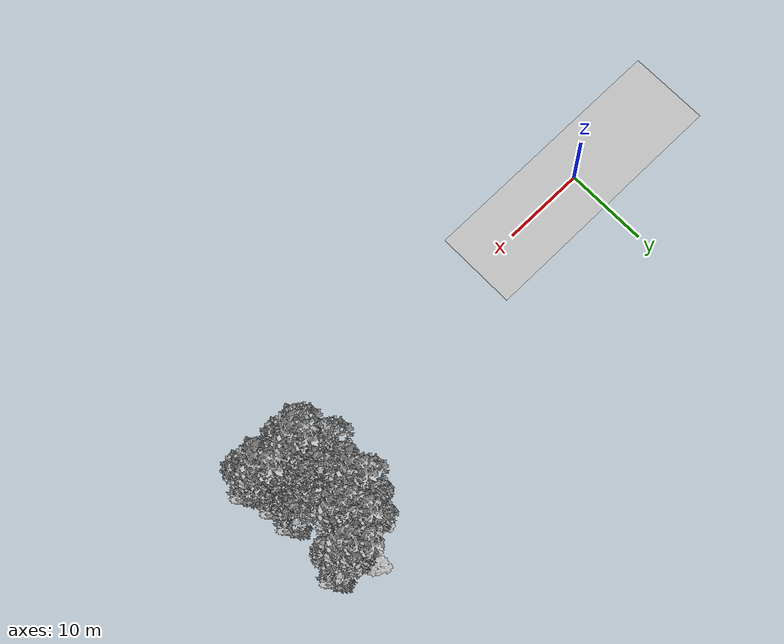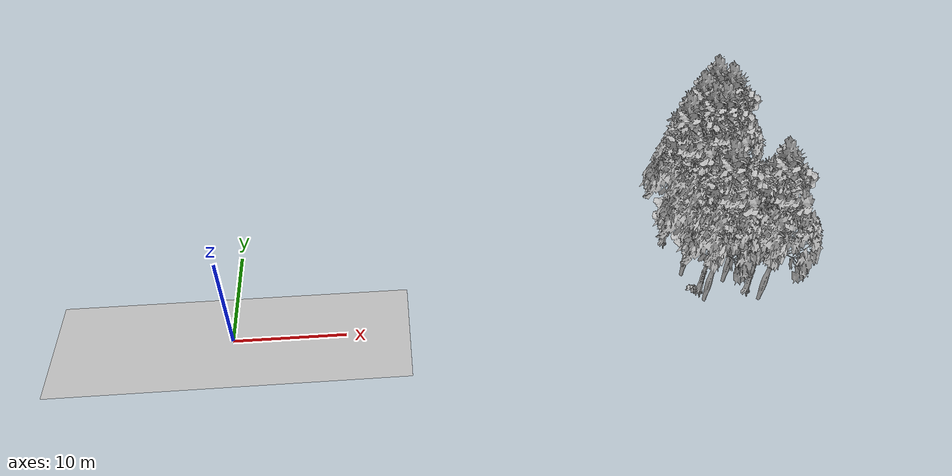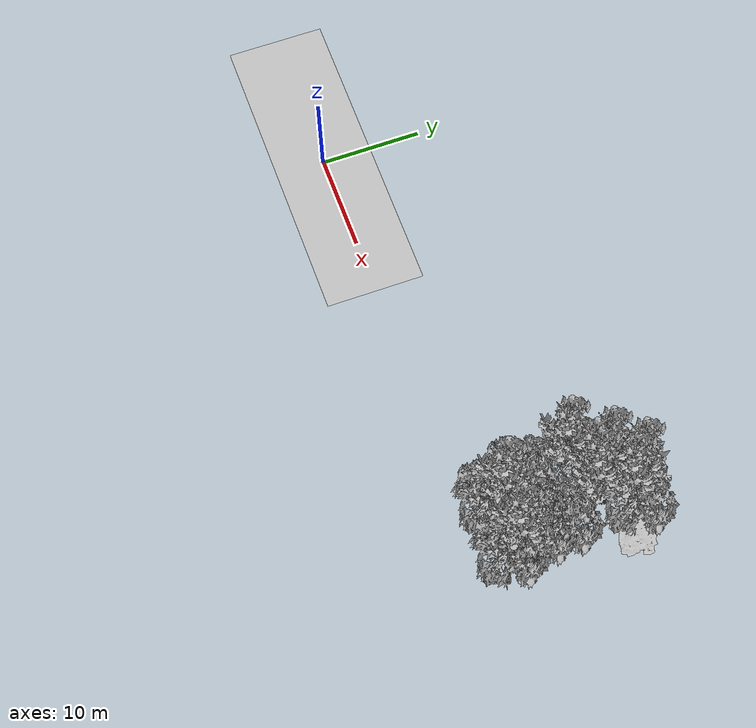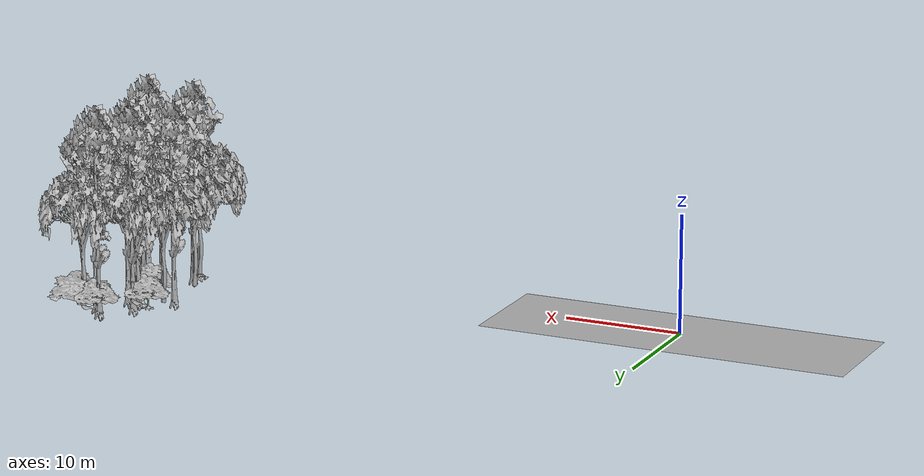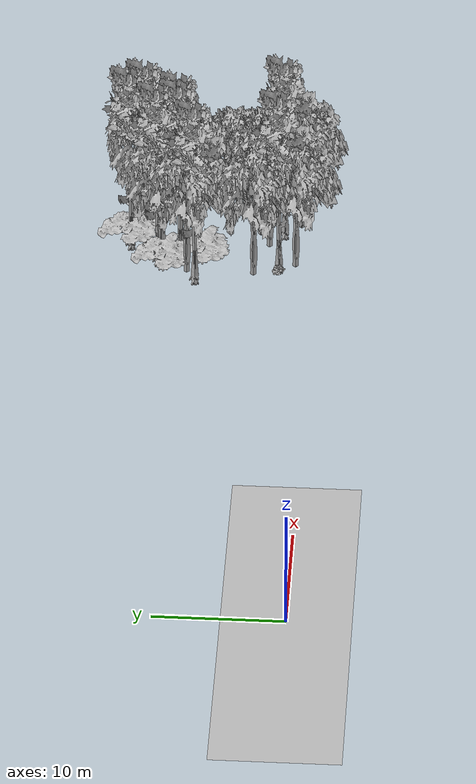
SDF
<sdf version="1.7">
 <world name="default">
  <model name="ground_plane">
   <static>1</static>
   <link name="link">
    <collision name="collision">
     <pose>-50 0 0 0 -0 0</pose>
     <geometry><plane><normal>0 0 1</normal><size>100 100</size></plane></geometry>
     <surface><contact><ode><min_depth>0.01</min_depth><max_vel>0</max_vel></ode></contact></surface>
    </collision>
    <visual name="grass">
     <cast_shadows>0</cast_shadows>
     <geometry>
      <mesh>
       <scale>0.5814285714285714 0.18142857142857144 0.1</scale>
       <uri>file://grass_plane/meshes/grass_plane.dae</uri>
      </mesh>
     </geometry>
    </visual>
   </link>
  </model>
  <model name="Tree 64">
   <static>1</static>
   <pose>47.43225602594465 13.644360248099208 0 1.57079 -0 0</pose>
   <link name="link">
    <collision name="collision">
     <geometry><mesh><scale>3.5 5 3.5</scale><uri>model://tree_2/meshes/tree_2.obj</uri></mesh></geometry>
    </collision>
    <visual name="visual">
     <geometry><mesh><scale>3.5 5 3.5</scale><uri>model://tree_2/meshes/tree_2.obj</uri></mesh></geometry>
    </visual>
   </link>
  </model>
  <model name="Tree 88">
   <static>1</static>
   <pose>45.497553167228816 14.632133089368605 0 1.57079 -0 0</pose>
   <link name="link">
    <collision name="collision">
     <geometry><mesh><scale>3.5 5 3.5</scale><uri>model://tree_9/meshes/tree_9.obj</uri></mesh></geometry>
    </collision>
    <visual name="visual">
     <geometry><mesh><scale>3.5 5 3.5</scale><uri>model://tree_9/meshes/tree_9.obj</uri></mesh></geometry>
    </visual>
   </link>
  </model>
  <model name="Tree 102">
   <static>1</static>
   <pose>46.45969222806566 13.449213576250724 0 1.57079 -0 0</pose>
   <link name="link">
    <collision name="collision">
     <geometry><mesh><scale>3.5 5 3.5</scale><uri>model://tree_9/meshes/tree_9.obj</uri></mesh></geometry>
    </collision>
    <visual name="visual">
     <geometry><mesh><scale>3.5 5 3.5</scale><uri>model://tree_9/meshes/tree_9.obj</uri></mesh></geometry>
    </visual>
   </link>
  </model>
  <model name="Tree 109">
   <static>1</static>
   <pose>45.544862444044796 3.707654224318844 0 1.57079 -0 0</pose>
   <link name="link">
    <collision name="collision">
     <geometry><mesh><scale>3.5 5 3.5</scale><uri>model://tree_2/meshes/tree_2.obj</uri></mesh></geometry>
    </collision>
    <visual name="visual">
     <geometry><mesh><scale>3.5 5 3.5</scale><uri>model://tree_2/meshes/tree_2.obj</uri></mesh></geometry>
    </visual>
   </link>
  </model>
  <model name="Tree 112">
   <static>1</static>
   <pose>43.095135489859416 2.8614332996386196 0 1.57079 -0 0</pose>
   <link name="link">
    <collision name="collision">
     <geometry><mesh><scale>3.5 5 3.5</scale><uri>model://tree_9/meshes/tree_9.obj</uri></mesh></geometry>
    </collision>
    <visual name="visual">
     <geometry><mesh><scale>3.5 5 3.5</scale><uri>model://tree_9/meshes/tree_9.obj</uri></mesh></geometry>
    </visual>
   </link>
  </model>
  <model name="Tree 143">
   <static>1</static>
   <pose>46.92206762484683 6.849575950923217 0 1.57079 -0 0</pose>
   <link name="link">
    <collision name="collision">
     <geometry><mesh><scale>3.5 5 3.5</scale><uri>model://tree_2/meshes/tree_2.obj</uri></mesh></geometry>
    </collision>
    <visual name="visual">
     <geometry><mesh><scale>3.5 5 3.5</scale><uri>model://tree_2/meshes/tree_2.obj</uri></mesh></geometry>
    </visual>
   </link>
  </model>
  <model name="Tree 168">
   <static>1</static>
   <pose>47.55760316236237 2.614897732891798 0 1.57079 -0 0</pose>
   <link name="link">
    <collision name="collision">
     <geometry><mesh><scale>3.5 5 3.5</scale><uri>model://tree_9/meshes/tree_9.obj</uri></mesh></geometry>
    </collision>
    <visual name="visual">
     <geometry><mesh><scale>3.5 5 3.5</scale><uri>model://tree_9/meshes/tree_9.obj</uri></mesh></geometry>
    </visual>
   </link>
  </model>
  <model name="Tree 171">
   <static>1</static>
   <pose>41.820135000855956 4.785373671862505 0 1.57079 -0 0</pose>
   <link name="link">
    <collision name="collision">
     <geometry><mesh><scale>3.5 5 3.5</scale><uri>model://tree_2/meshes/tree_2.obj</uri></mesh></geometry>
    </collision>
    <visual name="visual">
     <geometry><mesh><scale>3.5 5 3.5</scale><uri>model://tree_2/meshes/tree_2.obj</uri></mesh></geometry>
    </visual>
   </link>
  </model>
  <model name="Tree 187">
   <static>1</static>
   <pose>44.98650637647546 10.692690050463575 0 1.57079 -0 0</pose>
   <link name="link">
    <collision name="collision">
     <geometry><mesh><scale>3.5 5 3.5</scale><uri>model://tree_9/meshes/tree_9.obj</uri></mesh></geometry>
    </collision>
    <visual name="visual">
     <geometry><mesh><scale>3.5 5 3.5</scale><uri>model://tree_9/meshes/tree_9.obj</uri></mesh></geometry>
    </visual>
   </link>
  </model>
  <model name="Tree 207">
   <static>1</static>
   <pose>43.544698602668916 12.400981414717162 0 1.57079 -0 0</pose>
   <link name="link">
    <collision name="collision">
     <geometry><mesh><scale>3.5 5 3.5</scale><uri>model://tree_9/meshes/tree_9.obj</uri></mesh></geometry>
    </collision>
    <visual name="visual">
     <geometry><mesh><scale>3.5 5 3.5</scale><uri>model://tree_9/meshes/tree_9.obj</uri></mesh></geometry>
    </visual>
   </link>
  </model>
  <model name="Tree 297">
   <static>1</static>
   <pose>45.540011756486905 14.781627761965158 0 1.57079 -0 0</pose>
   <link name="link">
    <collision name="collision">
     <geometry><mesh><scale>4 2.5 4</scale><uri>model://tree_1/meshes/tree_1.obj</uri></mesh></geometry>
    </collision>
    <visual name="visual">
     <geometry><mesh><scale>4 2.5 4</scale><uri>model://tree_1/meshes/tree_1.obj</uri></mesh></geometry>
    </visual>
   </link>
  </model>
  <model name="Tree 308">
   <static>1</static>
   <pose>43.473454013071105 8.911023551147427 0 1.57079 -0 0</pose>
   <link name="link">
    <collision name="collision">
     <geometry><mesh><scale>4 2.5 4</scale><uri>model://tree_1/meshes/tree_1.obj</uri></mesh></geometry>
    </collision>
    <visual name="visual">
     <geometry><mesh><scale>4 2.5 4</scale><uri>model://tree_1/meshes/tree_1.obj</uri></mesh></geometry>
    </visual>
   </link>
  </model>
  <model name="Tree 369">
   <static>1</static>
   <pose>47.035789537566075 4.45140480459051 0 1.57079 -0 0</pose>
   <link name="link">
    <collision name="collision">
     <geometry><mesh><scale>3.5 5 3.5</scale><uri>model://tree_2/meshes/tree_2.obj</uri></mesh></geometry>
    </collision>
    <visual name="visual">
     <geometry><mesh><scale>3.5 5 3.5</scale><uri>model://tree_2/meshes/tree_2.obj</uri></mesh></geometry>
    </visual>
   </link>
  </model>
  <model name="Tree 419">
   <static>1</static>
   <pose>41.890790168644216 10.023943077187347 0 1.57079 -0 0</pose>
   <link name="link">
    <collision name="collision">
     <geometry><mesh><scale>3.5 5 3.5</scale><uri>model://tree_2/meshes/tree_2.obj</uri></mesh></geometry>
    </collision>
    <visual name="visual">
     <geometry><mesh><scale>3.5 5 3.5</scale><uri>model://tree_2/meshes/tree_2.obj</uri></mesh></geometry>
    </visual>
   </link>
  </model>
  <model name="Tree 428">
   <static>1</static>
   <pose>43.2181663551611 12.077579111651769 0 1.57079 -0 0</pose>
   <link name="link">
    <collision name="collision">
     <geometry><mesh><scale>3.5 5 3.5</scale><uri>model://tree_2/meshes/tree_2.obj</uri></mesh></geometry>
    </collision>
    <visual name="visual">
     <geometry><mesh><scale>3.5 5 3.5</scale><uri>model://tree_2/meshes/tree_2.obj</uri></mesh></geometry>
    </visual>
   </link>
  </model>
  <model name="Tree 430">
   <static>1</static>
   <pose>48.153200977341214 1.286063125056998 0 1.57079 -0 0</pose>
   <link name="link">
    <collision name="collision">
     <geometry><mesh><scale>3.5 5 3.5</scale><uri>model://tree_2/meshes/tree_2.obj</uri></mesh></geometry>
    </collision>
    <visual name="visual">
     <geometry><mesh><scale>3.5 5 3.5</scale><uri>model://tree_2/meshes/tree_2.obj</uri></mesh></geometry>
    </visual>
   </link>
  </model>
  <model name="Tree 446">
   <static>1</static>
   <pose>44.04755638040564 10.681580719426897 0 1.57079 -0 0</pose>
   <link name="link">
    <collision name="collision">
     <geometry><mesh><scale>3.5 5 3.5</scale><uri>model://tree_9/meshes/tree_9.obj</uri></mesh></geometry>
    </collision>
    <visual name="visual">
     <geometry><mesh><scale>3.5 5 3.5</scale><uri>model://tree_9/meshes/tree_9.obj</uri></mesh></geometry>
    </visual>
   </link>
  </model>
  <model name="Tree 509">
   <static>1</static>
   <pose>42.40449155719928 11.9301120969103 0 1.57079 -0 0</pose>
   <link name="link">
    <collision name="collision">
     <geometry><mesh><scale>4 2.5 4</scale><uri>model://tree_1/meshes/tree_1.obj</uri></mesh></geometry>
    </collision>
    <visual name="visual">
     <geometry><mesh><scale>4 2.5 4</scale><uri>model://tree_1/meshes/tree_1.obj</uri></mesh></geometry>
    </visual>
   </link>
  </model>
  <model name="Tree 510">
   <static>1</static>
   <pose>41.35768430387303 9.376146095044017 0 1.57079 -0 0</pose>
   <link name="link">
    <collision name="collision">
     <geometry><mesh><scale>3.5 5 3.5</scale><uri>model://tree_9/meshes/tree_9.obj</uri></mesh></geometry>
    </collision>
    <visual name="visual">
     <geometry><mesh><scale>3.5 5 3.5</scale><uri>model://tree_9/meshes/tree_9.obj</uri></mesh></geometry>
    </visual>
   </link>
  </model>
  <model name="Tree 519">
   <static>1</static>
   <pose>43.064434330102216 1.5338253885321187 0 1.57079 -0 0</pose>
   <link name="link">
    <collision name="collision">
     <geometry><mesh><scale>3.5 5 3.5</scale><uri>model://tree_2/meshes/tree_2.obj</uri></mesh></geometry>
    </collision>
    <visual name="visual">
     <geometry><mesh><scale>3.5 5 3.5</scale><uri>model://tree_2/meshes/tree_2.obj</uri></mesh></geometry>
    </visual>
   </link>
  </model>
  <model name="Tree 531">
   <static>1</static>
   <pose>48.21524916107876 13.268658169771275 0 1.57079 -0 0</pose>
   <link name="link">
    <collision name="collision">
     <geometry><mesh><scale>3 2 3</scale><uri>model://tree_3/meshes/tree_3.obj</uri></mesh></geometry>
    </collision>
    <visual name="visual">
     <geometry><mesh><scale>3 2 3</scale><uri>model://tree_3/meshes/tree_3.obj</uri></mesh></geometry>
    </visual>
   </link>
  </model>
  <model name="Bush 4">
   <static>1</static>
   <pose>42.377513277364486 2.8540053884009495 0 1.57079 -0 0</pose>
   <link name="link">
    <collision name="collision">
     <geometry><mesh><scale>2 2 2</scale><uri>model://bush_2/meshes/bush_2.obj</uri></mesh></geometry>
     <surface><contact><collide_without_contact>false</collide_without_contact></contact></surface>
    </collision>
    <visual name="visual">
     <geometry><mesh><scale>2 2 2</scale><uri>model://bush_2/meshes/bush_2.obj</uri></mesh></geometry>
    </visual>
   </link>
  </model>
 </world>
</sdf>
